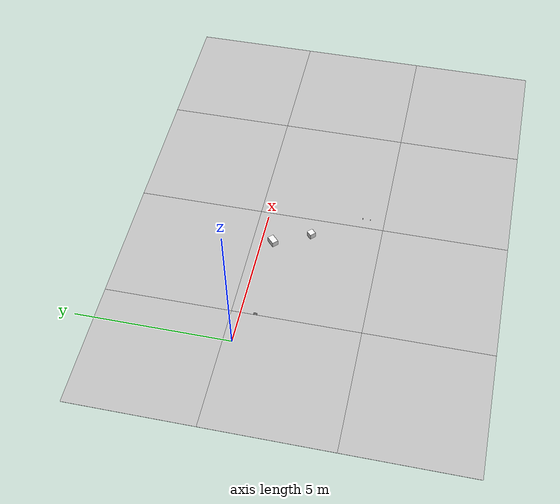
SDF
<sdf version='1.6'><world name='default'>
    <light name='sun_light' type='directional'>
      <pose frame=''>0 0 10 0 -0 0</pose>
      <diffuse>0.5 0.5 0.5 1</diffuse>
      <specular>0.1 0.1 0.1 1</specular>
      <direction>0.1 0.1 -0.9</direction>
      <attenuation>
        <range>20</range>
        <constant>0.5</constant>
        <linear>0.01</linear>
        <quadratic>0.001</quadratic>
      </attenuation>
      <cast_shadows>1</cast_shadows>
    </light>

    <model name='Tile/0-0'>
      <static>1</static>
      <link name='link'>
        <collision name='collision'>
          <geometry>
            <plane>
              <normal>0 0 1</normal>
              <size>4.096 4.096</size>
            </plane>
          </geometry>
          <surface>
            <friction>
              <ode>
                <mu>100</mu>
                <mu2>50</mu2>
              </ode>
              <torsional>
                <ode/>
              </torsional>
            </friction>
            <contact>
              <ode/>
            </contact>
            <bounce/>
          </surface>
          <max_contacts>10</max_contacts>
        </collision>
        <visual name='visual'>
          <cast_shadows>0</cast_shadows>
          <geometry>
            <plane>
              <normal>0 0 1</normal>
              <size>4.096 4.096</size>
            </plane>
          </geometry>
          <material>
            <script>
              <uri>file://materials/scripts</uri>
              <uri>file://materials/textures</uri>
              <name>Tile/5eab350b8220ac9944dbdfa4ac3288c7c17e24c3bf5df0dfcf6173d64dae00a1</name>
            </script>
          </material>
        </visual>
        <self_collide>0</self_collide>
        <enable_wind>0</enable_wind>
        <kinematic>0</kinematic>
      </link>
      <pose frame=''>-0.952 -5.8490562748477135 0 0 -0 0</pose>
    </model>

    <model name='Tile/0-1'>
      <static>1</static>
      <link name='link'>
        <collision name='collision'>
          <geometry>
            <plane>
              <normal>0 0 1</normal>
              <size>4.096 4.096</size>
            </plane>
          </geometry>
          <surface>
            <friction>
              <ode>
                <mu>100</mu>
                <mu2>50</mu2>
              </ode>
              <torsional>
                <ode/>
              </torsional>
            </friction>
            <contact>
              <ode/>
            </contact>
            <bounce/>
          </surface>
          <max_contacts>10</max_contacts>
        </collision>
        <visual name='visual'>
          <cast_shadows>0</cast_shadows>
          <geometry>
            <plane>
              <normal>0 0 1</normal>
              <size>4.096 4.096</size>
            </plane>
          </geometry>
          <material>
            <script>
              <uri>file://materials/scripts</uri>
              <uri>file://materials/textures</uri>
              <name>Tile/e82ef58215de809f4170995ba535241e99c468c92833aea064935ad51863be1e</name>
            </script>
          </material>
        </visual>
        <self_collide>0</self_collide>
        <enable_wind>0</enable_wind>
        <kinematic>0</kinematic>
      </link>
      <pose frame=''>-0.952 -1.7530562748477134 0 0 -0 0</pose>
    </model>

    <model name='Tile/0-2'>
      <static>1</static>
      <link name='link'>
        <collision name='collision'>
          <geometry>
            <plane>
              <normal>0 0 1</normal>
              <size>4.096 4.096</size>
            </plane>
          </geometry>
          <surface>
            <friction>
              <ode>
                <mu>100</mu>
                <mu2>50</mu2>
              </ode>
              <torsional>
                <ode/>
              </torsional>
            </friction>
            <contact>
              <ode/>
            </contact>
            <bounce/>
          </surface>
          <max_contacts>10</max_contacts>
        </collision>
        <visual name='visual'>
          <cast_shadows>0</cast_shadows>
          <geometry>
            <plane>
              <normal>0 0 1</normal>
              <size>4.096 4.096</size>
            </plane>
          </geometry>
          <material>
            <script>
              <uri>file://materials/scripts</uri>
              <uri>file://materials/textures</uri>
              <name>Tile/66315d3575087c82827dcac3918ee2a4a7a5d0e56358bc125e16bd6c98338150</name>
            </script>
          </material>
        </visual>
        <self_collide>0</self_collide>
        <enable_wind>0</enable_wind>
        <kinematic>0</kinematic>
      </link>
      <pose frame=''>-0.952 2.3429437251522867 0 0 -0 0</pose>
    </model>

    <model name='Tile/1-0'>
      <static>1</static>
      <link name='link'>
        <collision name='collision'>
          <geometry>
            <plane>
              <normal>0 0 1</normal>
              <size>4.096 4.096</size>
            </plane>
          </geometry>
          <surface>
            <friction>
              <ode>
                <mu>100</mu>
                <mu2>50</mu2>
              </ode>
              <torsional>
                <ode/>
              </torsional>
            </friction>
            <contact>
              <ode/>
            </contact>
            <bounce/>
          </surface>
          <max_contacts>10</max_contacts>
        </collision>
        <visual name='visual'>
          <cast_shadows>0</cast_shadows>
          <geometry>
            <plane>
              <normal>0 0 1</normal>
              <size>4.096 4.096</size>
            </plane>
          </geometry>
          <material>
            <script>
              <uri>file://materials/scripts</uri>
              <uri>file://materials/textures</uri>
              <name>Tile/98386fd035b6d4e9de0cf8df3caa57902e82937034db56d83d716e550cb3df24</name>
            </script>
          </material>
        </visual>
        <self_collide>0</self_collide>
        <enable_wind>0</enable_wind>
        <kinematic>0</kinematic>
      </link>
      <pose frame=''>3.144 -5.8490562748477135 0 0 -0 0</pose>
    </model>

    <model name='Tile/1-1'>
      <static>1</static>
      <link name='link'>
        <collision name='collision'>
          <geometry>
            <plane>
              <normal>0 0 1</normal>
              <size>4.096 4.096</size>
            </plane>
          </geometry>
          <surface>
            <friction>
              <ode>
                <mu>100</mu>
                <mu2>50</mu2>
              </ode>
              <torsional>
                <ode/>
              </torsional>
            </friction>
            <contact>
              <ode/>
            </contact>
            <bounce/>
          </surface>
          <max_contacts>10</max_contacts>
        </collision>
        <visual name='visual'>
          <cast_shadows>0</cast_shadows>
          <geometry>
            <plane>
              <normal>0 0 1</normal>
              <size>4.096 4.096</size>
            </plane>
          </geometry>
          <material>
            <script>
              <uri>file://materials/scripts</uri>
              <uri>file://materials/textures</uri>
              <name>Tile/19d6425a9e6b4defe5a475c79cab2313ca48e40ccfe5918f3bb0c07c0fc27362</name>
            </script>
          </material>
        </visual>
        <self_collide>0</self_collide>
        <enable_wind>0</enable_wind>
        <kinematic>0</kinematic>
      </link>
      <pose frame=''>3.144 -1.7530562748477134 0 0 -0 0</pose>
    </model>

    <model name='Tile/1-2'>
      <static>1</static>
      <link name='link'>
        <collision name='collision'>
          <geometry>
            <plane>
              <normal>0 0 1</normal>
              <size>4.096 4.096</size>
            </plane>
          </geometry>
          <surface>
            <friction>
              <ode>
                <mu>100</mu>
                <mu2>50</mu2>
              </ode>
              <torsional>
                <ode/>
              </torsional>
            </friction>
            <contact>
              <ode/>
            </contact>
            <bounce/>
          </surface>
          <max_contacts>10</max_contacts>
        </collision>
        <visual name='visual'>
          <cast_shadows>0</cast_shadows>
          <geometry>
            <plane>
              <normal>0 0 1</normal>
              <size>4.096 4.096</size>
            </plane>
          </geometry>
          <material>
            <script>
              <uri>file://materials/scripts</uri>
              <uri>file://materials/textures</uri>
              <name>Tile/f13f9f1af1a96ce3bfd03646aa4ae7ded046275242b1defbad764082364e0c37</name>
            </script>
          </material>
        </visual>
        <self_collide>0</self_collide>
        <enable_wind>0</enable_wind>
        <kinematic>0</kinematic>
      </link>
      <pose frame=''>3.144 2.3429437251522867 0 0 -0 0</pose>
    </model>

    <model name='Tile/2-0'>
      <static>1</static>
      <link name='link'>
        <collision name='collision'>
          <geometry>
            <plane>
              <normal>0 0 1</normal>
              <size>4.096 4.096</size>
            </plane>
          </geometry>
          <surface>
            <friction>
              <ode>
                <mu>100</mu>
                <mu2>50</mu2>
              </ode>
              <torsional>
                <ode/>
              </torsional>
            </friction>
            <contact>
              <ode/>
            </contact>
            <bounce/>
          </surface>
          <max_contacts>10</max_contacts>
        </collision>
        <visual name='visual'>
          <cast_shadows>0</cast_shadows>
          <geometry>
            <plane>
              <normal>0 0 1</normal>
              <size>4.096 4.096</size>
            </plane>
          </geometry>
          <material>
            <script>
              <uri>file://materials/scripts</uri>
              <uri>file://materials/textures</uri>
              <name>Tile/a1afbc4e2066c0ee41d8aaa82cd5a30dc604b68b65cdfbbc882674bab828c84e</name>
            </script>
          </material>
        </visual>
        <self_collide>0</self_collide>
        <enable_wind>0</enable_wind>
        <kinematic>0</kinematic>
      </link>
      <pose frame=''>7.24 -5.8490562748477135 0 0 -0 0</pose>
    </model>

    <model name='Tile/2-1'>
      <static>1</static>
      <link name='link'>
        <collision name='collision'>
          <geometry>
            <plane>
              <normal>0 0 1</normal>
              <size>4.096 4.096</size>
            </plane>
          </geometry>
          <surface>
            <friction>
              <ode>
                <mu>100</mu>
                <mu2>50</mu2>
              </ode>
              <torsional>
                <ode/>
              </torsional>
            </friction>
            <contact>
              <ode/>
            </contact>
            <bounce/>
          </surface>
          <max_contacts>10</max_contacts>
        </collision>
        <visual name='visual'>
          <cast_shadows>0</cast_shadows>
          <geometry>
            <plane>
              <normal>0 0 1</normal>
              <size>4.096 4.096</size>
            </plane>
          </geometry>
          <material>
            <script>
              <uri>file://materials/scripts</uri>
              <uri>file://materials/textures</uri>
              <name>Tile/353fbb68b94d51863284fafcddc44d83fe854bab08245acaef8b94e39c92e222</name>
            </script>
          </material>
        </visual>
        <self_collide>0</self_collide>
        <enable_wind>0</enable_wind>
        <kinematic>0</kinematic>
      </link>
      <pose frame=''>7.24 -1.7530562748477134 0 0 -0 0</pose>
    </model>

    <model name='Tile/2-2'>
      <static>1</static>
      <link name='link'>
        <collision name='collision'>
          <geometry>
            <plane>
              <normal>0 0 1</normal>
              <size>4.096 4.096</size>
            </plane>
          </geometry>
          <surface>
            <friction>
              <ode>
                <mu>100</mu>
                <mu2>50</mu2>
              </ode>
              <torsional>
                <ode/>
              </torsional>
            </friction>
            <contact>
              <ode/>
            </contact>
            <bounce/>
          </surface>
          <max_contacts>10</max_contacts>
        </collision>
        <visual name='visual'>
          <cast_shadows>0</cast_shadows>
          <geometry>
            <plane>
              <normal>0 0 1</normal>
              <size>4.096 4.096</size>
            </plane>
          </geometry>
          <material>
            <script>
              <uri>file://materials/scripts</uri>
              <uri>file://materials/textures</uri>
              <name>Tile/5eab350b8220ac9944dbdfa4ac3288c7c17e24c3bf5df0dfcf6173d64dae00a1</name>
            </script>
          </material>
        </visual>
        <self_collide>0</self_collide>
        <enable_wind>0</enable_wind>
        <kinematic>0</kinematic>
      </link>
      <pose frame=''>7.24 2.3429437251522867 0 0 -0 0</pose>
    </model>

    <model name='Tile/3-0'>
      <static>1</static>
      <link name='link'>
        <collision name='collision'>
          <geometry>
            <plane>
              <normal>0 0 1</normal>
              <size>4.096 4.096</size>
            </plane>
          </geometry>
          <surface>
            <friction>
              <ode>
                <mu>100</mu>
                <mu2>50</mu2>
              </ode>
              <torsional>
                <ode/>
              </torsional>
            </friction>
            <contact>
              <ode/>
            </contact>
            <bounce/>
          </surface>
          <max_contacts>10</max_contacts>
        </collision>
        <visual name='visual'>
          <cast_shadows>0</cast_shadows>
          <geometry>
            <plane>
              <normal>0 0 1</normal>
              <size>4.096 4.096</size>
            </plane>
          </geometry>
          <material>
            <script>
              <uri>file://materials/scripts</uri>
              <uri>file://materials/textures</uri>
              <name>Tile/5eab350b8220ac9944dbdfa4ac3288c7c17e24c3bf5df0dfcf6173d64dae00a1</name>
            </script>
          </material>
        </visual>
        <self_collide>0</self_collide>
        <enable_wind>0</enable_wind>
        <kinematic>0</kinematic>
      </link>
      <pose frame=''>11.336 -5.8490562748477135 0 0 -0 0</pose>
    </model>

    <model name='Tile/3-1'>
      <static>1</static>
      <link name='link'>
        <collision name='collision'>
          <geometry>
            <plane>
              <normal>0 0 1</normal>
              <size>4.096 4.096</size>
            </plane>
          </geometry>
          <surface>
            <friction>
              <ode>
                <mu>100</mu>
                <mu2>50</mu2>
              </ode>
              <torsional>
                <ode/>
              </torsional>
            </friction>
            <contact>
              <ode/>
            </contact>
            <bounce/>
          </surface>
          <max_contacts>10</max_contacts>
        </collision>
        <visual name='visual'>
          <cast_shadows>0</cast_shadows>
          <geometry>
            <plane>
              <normal>0 0 1</normal>
              <size>4.096 4.096</size>
            </plane>
          </geometry>
          <material>
            <script>
              <uri>file://materials/scripts</uri>
              <uri>file://materials/textures</uri>
              <name>Tile/5eab350b8220ac9944dbdfa4ac3288c7c17e24c3bf5df0dfcf6173d64dae00a1</name>
            </script>
          </material>
        </visual>
        <self_collide>0</self_collide>
        <enable_wind>0</enable_wind>
        <kinematic>0</kinematic>
      </link>
      <pose frame=''>11.336 -1.7530562748477134 0 0 -0 0</pose>
    </model>

    <model name='Tile/3-2'>
      <static>1</static>
      <link name='link'>
        <collision name='collision'>
          <geometry>
            <plane>
              <normal>0 0 1</normal>
              <size>4.096 4.096</size>
            </plane>
          </geometry>
          <surface>
            <friction>
              <ode>
                <mu>100</mu>
                <mu2>50</mu2>
              </ode>
              <torsional>
                <ode/>
              </torsional>
            </friction>
            <contact>
              <ode/>
            </contact>
            <bounce/>
          </surface>
          <max_contacts>10</max_contacts>
        </collision>
        <visual name='visual'>
          <cast_shadows>0</cast_shadows>
          <geometry>
            <plane>
              <normal>0 0 1</normal>
              <size>4.096 4.096</size>
            </plane>
          </geometry>
          <material>
            <script>
              <uri>file://materials/scripts</uri>
              <uri>file://materials/textures</uri>
              <name>Tile/5eab350b8220ac9944dbdfa4ac3288c7c17e24c3bf5df0dfcf6173d64dae00a1</name>
            </script>
          </material>
        </visual>
        <self_collide>0</self_collide>
        <enable_wind>0</enable_wind>
        <kinematic>0</kinematic>
      </link>
      <pose frame=''>11.336 2.3429437251522867 0 0 -0 0</pose>
    </model>

    <model name='Obstacle/-18/0'>
      <pose frame=''>3.966726188957803 -0.3746951672795061 0.1 0 0 -0.7853981633974483</pose>
      <link name='link'>
        <inertial>
          <mass>10</mass>
          <inertia>
            <ixx>0.166667</ixx>
            <ixy>0</ixy>
            <ixz>0</ixz>
            <iyy>0.166667</iyy>
            <iyz>0</iyz>
            <izz>0.166667</izz>
          </inertia>
        </inertial>
        <collision name='collision'>
          <geometry>
            <box>
              <size>0.2 0.3 0.2</size>
            </box>
          </geometry>
          <max_contacts>10</max_contacts>
          <surface>
            <contact>
              <ode/>
            </contact>
            <bounce/>
            <friction>
              <torsional>
                <ode/>
              </torsional>
              <ode/>
            </friction>
          </surface>
        </collision>
        <visual name='visual'>
          <geometry>
            <box>
              <size>0.2 0.3 0.2</size>
            </box>
          </geometry>
          <material>
            <script>
              <name>Gazebo/White</name>
              <uri>file://media/materials/scripts/gazebo.material</uri>
            </script>
          </material>
        </visual>
        <self_collide>0</self_collide>
        <enable_wind>0</enable_wind>
        <kinematic>0</kinematic>
      </link>
    </model>

    <model name='Obstacle/-23/0'>
      <pose frame=''>4.497056274847714 -1.5414213562373096 0.1 0 0 -0.7853981633974483</pose>
      <link name='link'>
        <inertial>
          <mass>10</mass>
          <inertia>
            <ixx>0.166667</ixx>
            <ixy>0</ixy>
            <ixz>0</ixz>
            <iyy>0.166667</iyy>
            <iyz>0</iyz>
            <izz>0.166667</izz>
          </inertia>
        </inertial>
        <collision name='collision'>
          <geometry>
            <box>
              <size>0.2 0.2 0.2</size>
            </box>
          </geometry>
          <max_contacts>10</max_contacts>
          <surface>
            <contact>
              <ode/>
            </contact>
            <bounce/>
            <friction>
              <torsional>
                <ode/>
              </torsional>
              <ode/>
            </friction>
          </surface>
        </collision>
        <visual name='visual'>
          <geometry>
            <box>
              <size>0.2 0.2 0.2</size>
            </box>
          </geometry>
          <material>
            <script>
              <name>Gazebo/White</name>
              <uri>file://media/materials/scripts/gazebo.material</uri>
            </script>
          </material>
        </visual>
        <self_collide>0</self_collide>
        <enable_wind>0</enable_wind>
        <kinematic>0</kinematic>
      </link>
    </model>

    <model name='Sign/-13'>
      <static>1</static>
      <link name='link'>
        <visual name='visual'>
          <cast_shadows>0</cast_shadows>
          <geometry>
            <plane>
              <normal>0 0 1</normal>
              <size>0.1 0.1</size>
            </plane>
          </geometry>
          <material>
            <script>
              <uri>file://materials/scripts</uri>
              <uri>file://materials/textures</uri>
              <name>Sign/stvo-306</name>
            </script>
          </material>
        </visual>
        <self_collide>0</self_collide>
        <enable_wind>0</enable_wind>
        <kinematic>0</kinematic>
      </link>
      <pose frame=''>0.9999999999999999 -0.49999999999999994 0.2 1.5707963267948966 0 4.71238898038469</pose>
    </model>

    <model name='Sign/-38'>
      <static>1</static>
      <link name='link'>
        <visual name='visual'>
          <cast_shadows>0</cast_shadows>
          <geometry>
            <plane>
              <normal>0 0 1</normal>
              <size>0.1 0.1</size>
            </plane>
          </geometry>
          <material>
            <script>
              <uri>file://materials/scripts</uri>
              <uri>file://materials/textures</uri>
              <name>Sign/stvo-209-10</name>
            </script>
          </material>
        </visual>
        <self_collide>0</self_collide>
        <enable_wind>0</enable_wind>
        <kinematic>0</kinematic>
      </link>
      <pose frame=''>5.3970562748477136 -3.3470562748477137 0.2 1.5707963267948966 0 3.141592653589793</pose>
    </model>

    <model name='Sign/-39'>
      <static>1</static>
      <link name='link'>
        <visual name='visual'>
          <cast_shadows>0</cast_shadows>
          <geometry>
            <plane>
              <normal>0 0 1</normal>
              <size>0.1 0.1</size>
            </plane>
          </geometry>
          <material>
            <script>
              <uri>file://materials/scripts</uri>
              <uri>file://materials/textures</uri>
              <name>Sign/stvo-205</name>
            </script>
          </material>
        </visual>
        <self_collide>0</self_collide>
        <enable_wind>0</enable_wind>
        <kinematic>0</kinematic>
      </link>
      <pose frame=''>5.3970562748477136 -3.0970562748477137 0.2 1.5707963267948966 0 3.141592653589793</pose>
    </model>
    </world></sdf>
